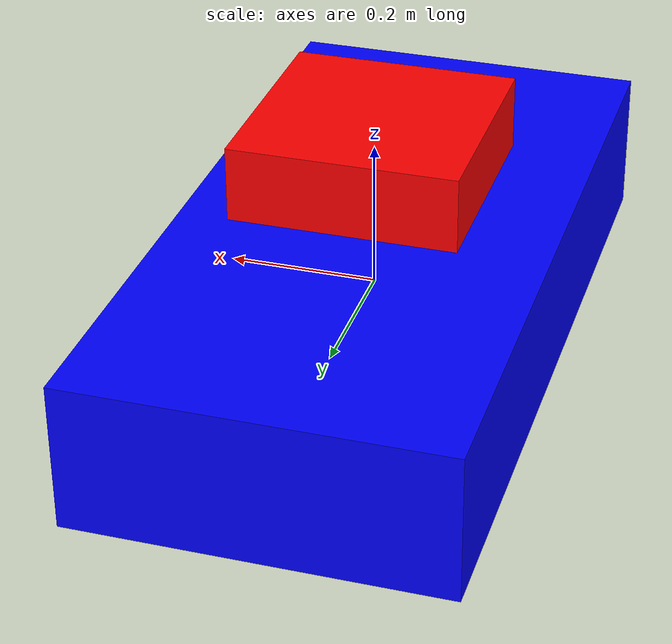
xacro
<?xml version="1.0"?>
<robot xmlns:xacro="http://www.ros.org/wiki/xacro" name="xacro_robot">

  <!-- 定义属性 -->
  <xacro:property name="base_width" value="0.5" />
  <xacro:property name="base_length" value="1.0" />
  <xacro:property name="base_height" value="0.2" />

  <!-- 定义宏：创建一个 box link -->
  <xacro:macro name="box_link" params="name width length height color_name r g b">
    <link name="${name}">
      <visual>
        <geometry>
          <box size="${width} ${length} ${height}" />
        </geometry>
        <material name="${color_name}">
          <color rgba="${r} ${g} ${b} 1.0" />
        </material>
      </visual>
    </link>
  </xacro:macro>

  <!-- 调用宏创建 base_link -->
  <xacro:box_link name="base_link"
    width="${base_width}" length="${base_length}" height="${base_height}"
    color_name="blue" r="0" g="0" b="1" />

  <!-- 调用宏创建 top_link -->
  <xacro:box_link name="top_link"
    width="0.3" length="0.3" height="0.1"
    color_name="red" r="1" g="0" b="0" />

  <!-- 用 fixed joint 连接两个 link -->
  <joint name="base_to_top" type="fixed">
    <parent link="base_link" />
    <child link="top_link" />
    <origin xyz="0 0 ${base_height}" />
  </joint>

</robot>
